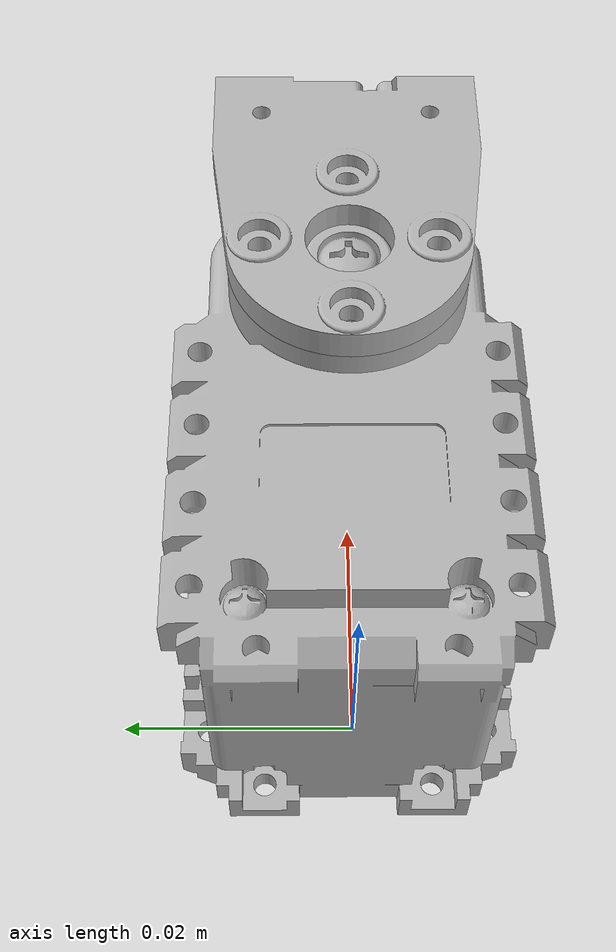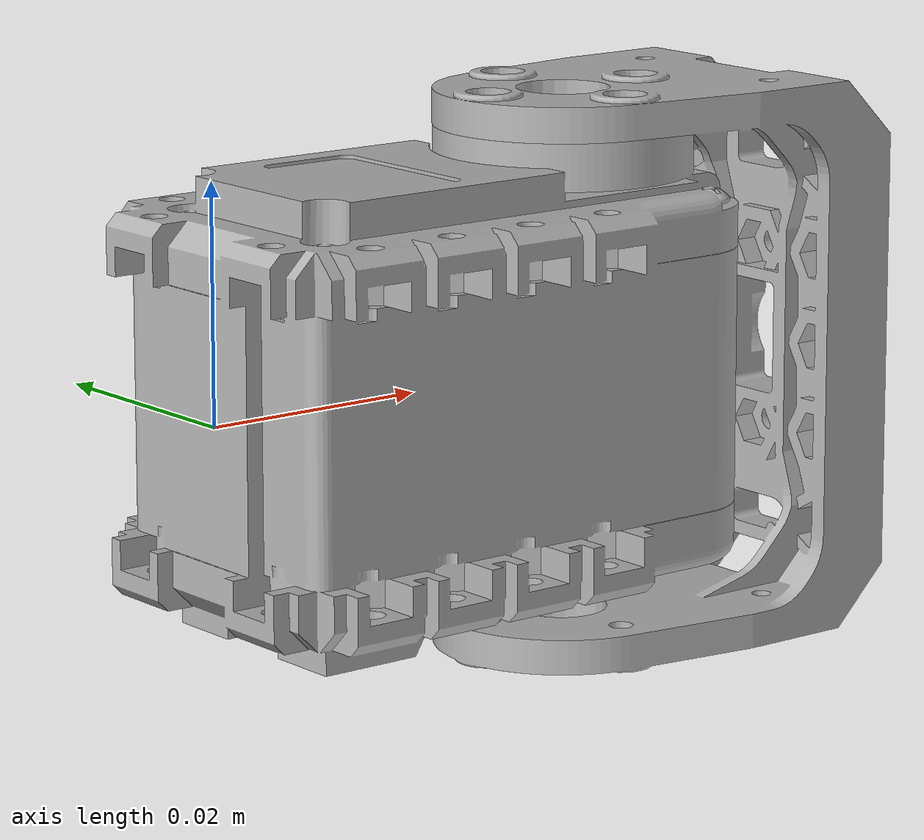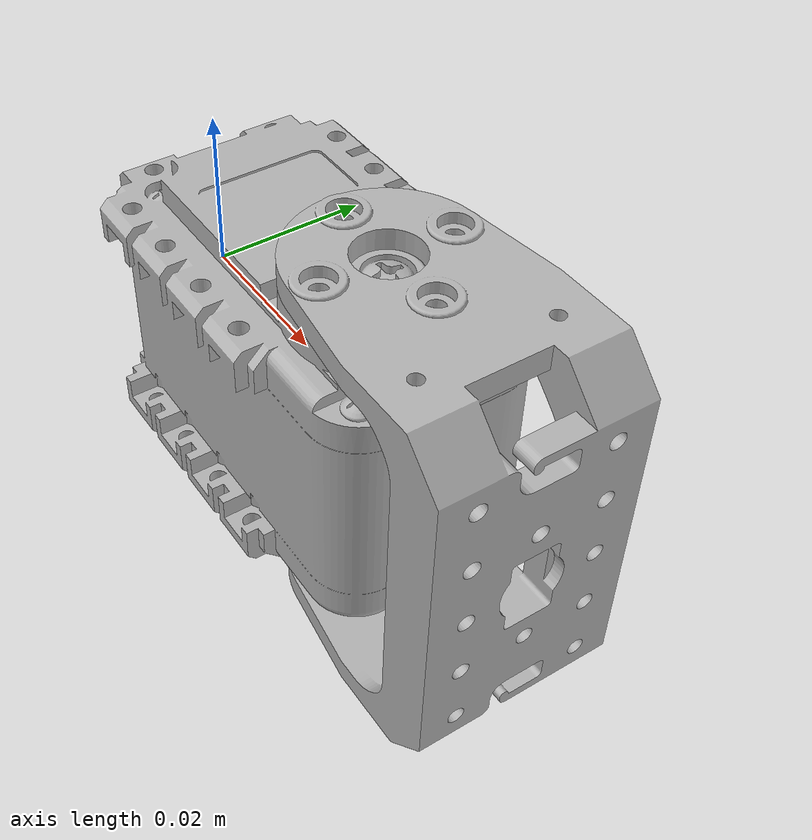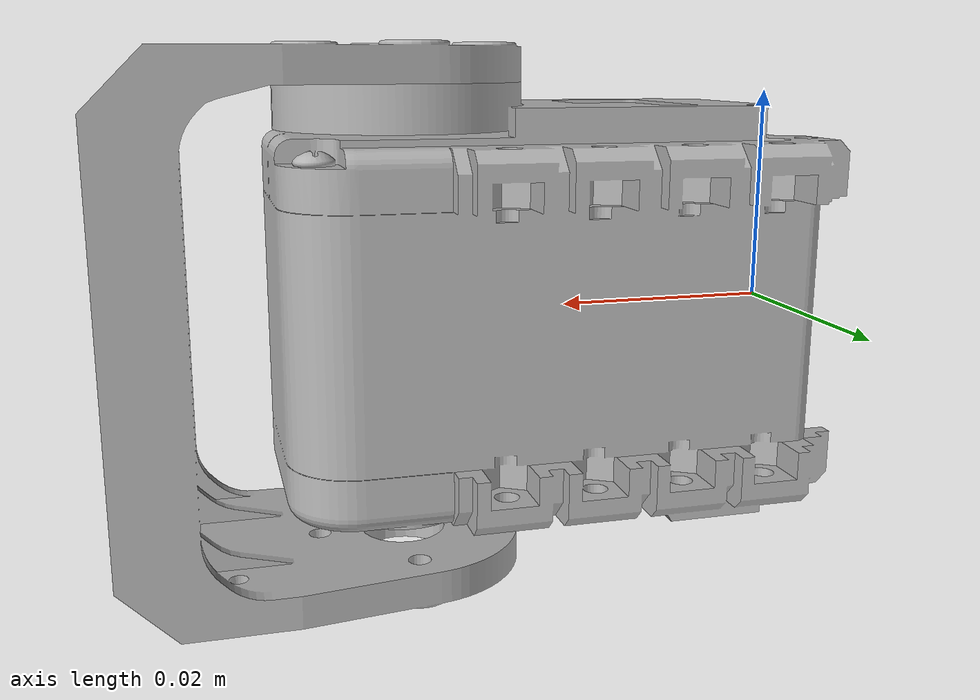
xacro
<?xml version="1.0" encoding="UTF-8"?>

<robot xmlns:xacro="http://www.ros.org/wiki/xacro" name="leg_test">

  <xacro:include filename="$(find hexapod_description)/model/leg.urdf.xacro"/>

  <link name="base_link"/>

  <joint name="test_leg_base_joint" type="fixed">
    <parent link="base_link"/>
    <child link="test_leg_base_link"/>
  </joint>

  <xacro:leg name="test"/>

</robot>

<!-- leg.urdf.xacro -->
<robot xmlns:xacro="http://www.ros.org/wiki/xacro" name="leg">

  <xacro:property name="pi" value="3.1415926535897931"/>

  <xacro:macro name="leg" params="name">

    <link name="${name}_leg_base_link">

      <visual>
        <origin xyz="0.036 0 0" rpy="0 0 ${-pi/2}"/>
        <geometry>
          <mesh filename="package://hexapod_description/meshes/AX12.dae" scale="0.001 0.001 0.001"/>
        </geometry>
      </visual>

    </link>

    <joint name="${name}_leg_joint_0" type="continuous">
      <parent link="${name}_leg_base_link"/>
      <child link="${name}_leg_link_0"/>
      <origin xyz="0.036 0 0" rpy="0 0 0"/>
      <axis xyz="0 0 1"/>
    </joint>

    <link name="${name}_leg_link_0">

      <visual>
        <origin xyz="0 0 0" rpy="0 ${pi/2} 0"/>
        <geometry>
          <mesh filename="package://hexapod_description/meshes/F2.dae" scale="0.001 0.001 0.001"/>
        </geometry>
      </visual>

    </link>

  </xacro:macro>

</robot>
